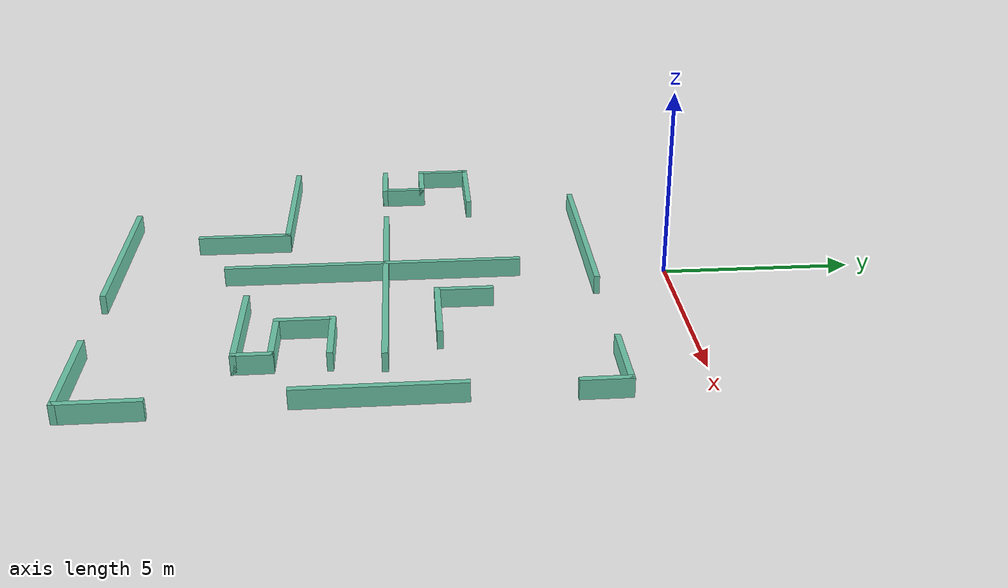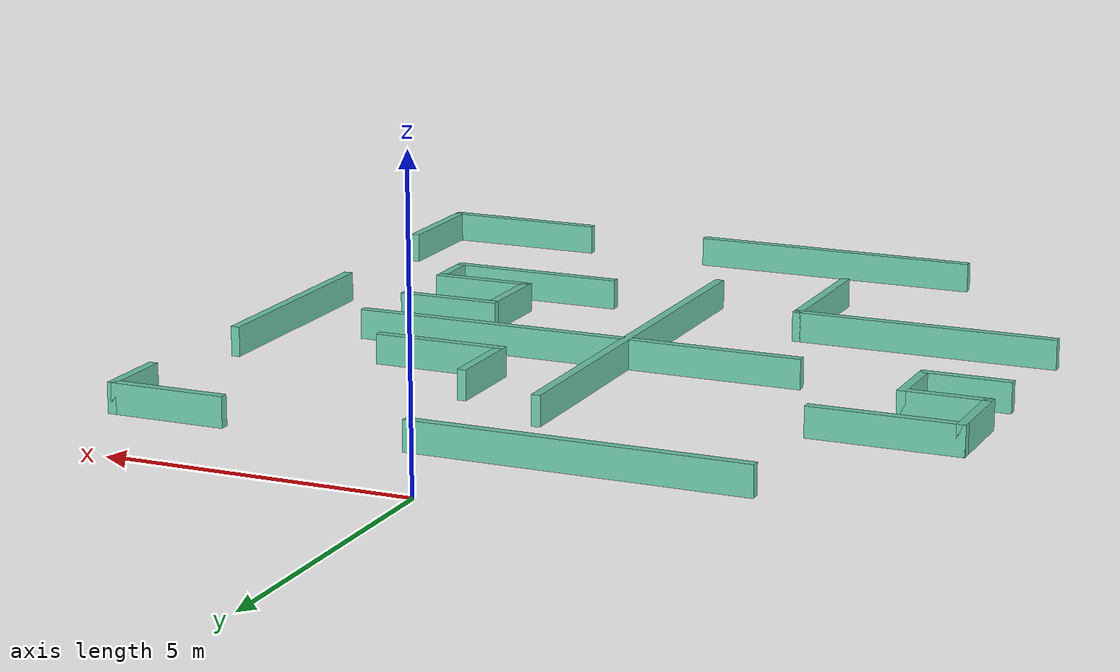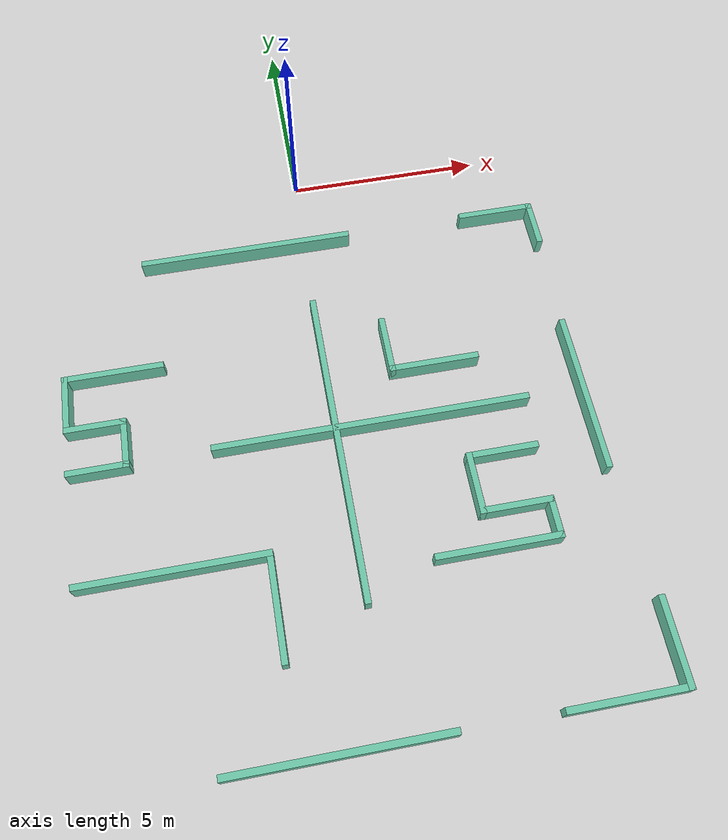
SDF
<?xml version='1.0'?>
<sdf version='1.6'>
  <model name='obstacle_pattern'>
    <pose frame=''>-0.144 -8.242 0 0 -0 0</pose>
    <link name='Wall_14'>
      <collision name='Wall_14_Collision'>
        <geometry>
          <box>
            <size>4 0.15 0.5</size>
          </box>
        </geometry>
        <pose frame=''>0 0 0.25 0 -0 0</pose>
      </collision>
      <visual name='Wall_14_Visual'>
        <pose frame=''>0 0 0.25 0 -0 0</pose>
        <geometry>
          <box>
            <size>4 0.15 0.5</size>
          </box>
        </geometry>
        <material>
          <script>
            <uri>file://media/materials/scripts/gazebo.material</uri>
            <name>Gazebo/Grey</name>
          </script>
          <ambient>0.435294 0.796078 0.67451 1</ambient>
        </material>
        <meta>
          <layer>0</layer>
        </meta>
      </visual>
      <pose frame=''>6.12636 0.687585 0 0 0 -1.5708</pose>
    </link>
    <link name='Wall_17'>
      <collision name='Wall_17_Collision'>
        <geometry>
          <box>
            <size>2 0.15 0.5</size>
          </box>
        </geometry>
        <pose frame=''>0 0 0.25 0 -0 0</pose>
      </collision>
      <visual name='Wall_17_Visual'>
        <pose frame=''>0 0 0.25 0 -0 0</pose>
        <geometry>
          <box>
            <size>2 0.15 0.5</size>
          </box>
        </geometry>
        <material>
          <script>
            <uri>file://media/materials/scripts/gazebo.material</uri>
            <name>Gazebo/Grey</name>
          </script>
          <ambient>0.435294 0.796078 0.67451 1</ambient>
        </material>
        <meta>
          <layer>0</layer>
        </meta>
      </visual>
      <pose frame=''>6.33 -5.327 0 0 0 -1.5708</pose>
    </link>
    <link name='Wall_18'>
      <collision name='Wall_18_Collision'>
        <geometry>
          <box>
            <size>2.8 0.15 0.5</size>
          </box>
        </geometry>
        <pose frame=''>0 0 0.25 0 -0 0</pose>
      </collision>
      <visual name='Wall_18_Visual'>
        <pose frame=''>0 0 0.25 0 -0 0</pose>
        <geometry>
          <box>
            <size>2.8 0.15 0.5</size>
          </box>
        </geometry>
        <material>
          <script>
            <uri>file://media/materials/scripts/gazebo.material</uri>
            <name>Gazebo/Grey</name>
          </script>
          <ambient>0.435294 0.796078 0.67451 1</ambient>
        </material>
        <meta>
          <layer>0</layer>
        </meta>
      </visual>
      <pose frame=''>5.005 -6.252 0 0 -0 3.14159</pose>
    </link>
    <link name='Wall_20'>
      <collision name='Wall_20_Collision'>
        <geometry>
          <box>
            <size>5 0.15 0.5</size>
          </box>
        </geometry>
        <pose frame=''>0 0 0.25 0 -0 0</pose>
      </collision>
      <visual name='Wall_20_Visual'>
        <pose frame=''>0 0 0.25 0 -0 0</pose>
        <geometry>
          <box>
            <size>5 0.15 0.5</size>
          </box>
        </geometry>
        <material>
          <script>
            <uri>file://media/materials/scripts/gazebo.material</uri>
            <name>Gazebo/Grey</name>
          </script>
          <ambient>0.435294 0.796078 0.67451 1</ambient>
        </material>
        <meta>
          <layer>0</layer>
        </meta>
      </visual>
      <pose frame=''>-1.10886 -6.23009 0 0 -0 3.14159</pose>
    </link>
    <link name='Wall_22'>
      <collision name='Wall_22_Collision'>
        <geometry>
          <box>
            <size>7.75 0.15 0.5</size>
          </box>
        </geometry>
        <pose frame=''>0 0 0.25 0 -0 0</pose>
      </collision>
      <visual name='Wall_22_Visual'>
        <pose frame=''>0 0 0.25 0 -0 0</pose>
        <geometry>
          <box>
            <size>7.75 0.15 0.5</size>
          </box>
        </geometry>
        <material>
          <script>
            <uri>file://media/materials/scripts/gazebo.material</uri>
            <name>Gazebo/Grey</name>
          </script>
          <ambient>0.435294 0.796078 0.67451 1</ambient>
        </material>
        <meta>
          <layer>0</layer>
        </meta>
      </visual>
      <pose frame=''>0.002 0.479 0 0 0 -1.5708</pose>
    </link>
    <link name='Wall_24'>
      <collision name='Wall_24_Collision'>
        <geometry>
          <box>
            <size>7.75 0.15 0.5</size>
          </box>
        </geometry>
        <pose frame=''>0 0 0.25 0 -0 0</pose>
      </collision>
      <visual name='Wall_24_Visual'>
        <pose frame=''>0 0 0.25 0 -0 0</pose>
        <geometry>
          <box>
            <size>7.75 0.15 0.5</size>
          </box>
        </geometry>
        <material>
          <script>
            <uri>file://media/materials/scripts/gazebo.material</uri>
            <name>Gazebo/Grey</name>
          </script>
          <ambient>0.435294 0.796078 0.67451 1</ambient>
        </material>
        <meta>
          <layer>0</layer>
        </meta>
      </visual>
      <pose frame=''>0.882621 0.804236 0 0 -0 0</pose>
    </link>
    <link name='Wall_26'>
      <collision name='Wall_26_Collision'>
        <geometry>
          <box>
            <size>2.5 0.15 0.5</size>
          </box>
        </geometry>
        <pose frame=''>0 0 0.25 0 -0 0</pose>
      </collision>
      <visual name='Wall_26_Visual'>
        <pose frame=''>0 0 0.25 0 -0 0</pose>
        <geometry>
          <box>
            <size>2.5 0.15 0.5</size>
          </box>
        </geometry>
        <material>
          <script>
            <uri>file://media/materials/scripts/gazebo.material</uri>
            <name>Gazebo/Grey</name>
          </script>
          <ambient>0.435294 0.796078 0.67451 1</ambient>
        </material>
        <meta>
          <layer>0</layer>
        </meta>
      </visual>
      <pose frame=''>-5.155 3.207 0 0 -0 3.14159</pose>
    </link>
    <link name='Wall_27'>
      <collision name='Wall_27_Collision'>
        <geometry>
          <box>
            <size>1.5 0.15 0.5</size>
          </box>
        </geometry>
        <pose frame=''>0 0 0.25 0 -0 0</pose>
      </collision>
      <visual name='Wall_27_Visual'>
        <pose frame=''>0 0 0.25 0 -0 0</pose>
        <geometry>
          <box>
            <size>1.5 0.15 0.5</size>
          </box>
        </geometry>
        <material>
          <script>
            <uri>file://media/materials/scripts/gazebo.material</uri>
            <name>Gazebo/Grey</name>
          </script>
          <ambient>0.435294 0.796078 0.67451 1</ambient>
        </material>
        <meta>
          <layer>0</layer>
        </meta>
      </visual>
      <pose frame=''>-6.33 2.532 0 0 0 -1.5708</pose>
    </link>
    <link name='Wall_28'>
      <collision name='Wall_28_Collision'>
        <geometry>
          <box>
            <size>1.5 0.15 0.5</size>
          </box>
        </geometry>
        <pose frame=''>0 0 0.25 0 -0 0</pose>
      </collision>
      <visual name='Wall_28_Visual'>
        <pose frame=''>0 0 0.25 0 -0 0</pose>
        <geometry>
          <box>
            <size>1.5 0.15 0.5</size>
          </box>
        </geometry>
        <material>
          <script>
            <uri>file://media/materials/scripts/gazebo.material</uri>
            <name>Gazebo/Grey</name>
          </script>
          <ambient>0.435294 0.796078 0.67451 1</ambient>
        </material>
        <meta>
          <layer>0</layer>
        </meta>
      </visual>
      <pose frame=''>-5.655 1.857 0 0 -0 0</pose>
    </link>
    <link name='Wall_29'>
      <collision name='Wall_29_Collision'>
        <geometry>
          <box>
            <size>1.25 0.15 0.5</size>
          </box>
        </geometry>
        <pose frame=''>0 0 0.25 0 -0 0</pose>
      </collision>
      <visual name='Wall_29_Visual'>
        <pose frame=''>0 0 0.25 0 -0 0</pose>
        <geometry>
          <box>
            <size>1.25 0.15 0.5</size>
          </box>
        </geometry>
        <material>
          <script>
            <uri>file://media/materials/scripts/gazebo.material</uri>
            <name>Gazebo/Grey</name>
          </script>
          <ambient>0.435294 0.796078 0.67451 1</ambient>
        </material>
        <meta>
          <layer>0</layer>
        </meta>
      </visual>
      <pose frame=''>-4.98 1.307 0 0 0 -1.5708</pose>
    </link>
    <link name='Wall_3'>
      <collision name='Wall_3_Collision'>
        <geometry>
          <box>
            <size>5.5 0.15 0.5</size>
          </box>
        </geometry>
        <pose frame=''>0 0 0.25 0 -0 0</pose>
      </collision>
      <visual name='Wall_3_Visual'>
        <pose frame=''>0 0 0.25 0 -0 0</pose>
        <geometry>
          <box>
            <size>5.5 0.15 0.5</size>
          </box>
        </geometry>
        <material>
          <script>
            <uri>file://media/materials/scripts/gazebo.material</uri>
            <name>Gazebo/Grey</name>
          </script>
          <ambient>0.435294 0.796078 0.67451 1</ambient>
        </material>
        <meta>
          <layer>0</layer>
        </meta>
      </visual>
      <pose frame=''>-1.481 6.232 0 0 -0 0</pose>
    </link>
    <link name='Wall_30'>
      <collision name='Wall_30_Collision'>
        <geometry>
          <box>
            <size>1.5 0.15 0.5</size>
          </box>
        </geometry>
        <pose frame=''>0 0 0.25 0 -0 0</pose>
      </collision>
      <visual name='Wall_30_Visual'>
        <pose frame=''>0 0 0.25 0 -0 0</pose>
        <geometry>
          <box>
            <size>1.5 0.15 0.5</size>
          </box>
        </geometry>
        <material>
          <script>
            <uri>file://media/materials/scripts/gazebo.material</uri>
            <name>Gazebo/Grey</name>
          </script>
          <ambient>0.435294 0.796078 0.67451 1</ambient>
        </material>
        <meta>
          <layer>0</layer>
        </meta>
      </visual>
      <pose frame=''>-5.655 0.757 0 0 -0 3.14159</pose>
    </link>
    <link name='Wall_32'>
      <collision name='Wall_32_Collision'>
        <geometry>
          <box>
            <size>1.75 0.15 0.5</size>
          </box>
        </geometry>
        <pose frame=''>0 0 0.25 0 -0 0</pose>
      </collision>
      <visual name='Wall_32_Visual'>
        <pose frame=''>0 0 0.25 0 -0 0</pose>
        <geometry>
          <box>
            <size>1.75 0.15 0.5</size>
          </box>
        </geometry>
        <material>
          <script>
            <uri>file://media/materials/scripts/gazebo.material</uri>
            <name>Gazebo/Grey</name>
          </script>
          <ambient>0.435294 0.796078 0.67451 1</ambient>
        </material>
        <meta>
          <layer>0</layer>
        </meta>
      </visual>
      <pose frame=''>3.764 -0.454999 0 0 -0 3.14159</pose>
    </link>
    <link name='Wall_33'>
      <collision name='Wall_33_Collision'>
        <geometry>
          <box>
            <size>1.5 0.15 0.5</size>
          </box>
        </geometry>
        <pose frame=''>0 0 0.25 0 -0 0</pose>
      </collision>
      <visual name='Wall_33_Visual'>
        <pose frame=''>0 0 0.25 0 -0 0</pose>
        <geometry>
          <box>
            <size>1.5 0.15 0.5</size>
          </box>
        </geometry>
        <material>
          <script>
            <uri>file://media/materials/scripts/gazebo.material</uri>
            <name>Gazebo/Grey</name>
          </script>
          <ambient>0.435294 0.796078 0.67451 1</ambient>
        </material>
        <meta>
          <layer>0</layer>
        </meta>
      </visual>
      <pose frame=''>2.964 -1.13 0 0 0 -1.5708</pose>
    </link>
    <link name='Wall_34'>
      <collision name='Wall_34_Collision'>
        <geometry>
          <box>
            <size>1.75 0.15 0.5</size>
          </box>
        </geometry>
        <pose frame=''>0 0 0.25 0 -0 0</pose>
      </collision>
      <visual name='Wall_34_Visual'>
        <pose frame=''>0 0 0.25 0 -0 0</pose>
        <geometry>
          <box>
            <size>1.75 0.15 0.5</size>
          </box>
        </geometry>
        <material>
          <script>
            <uri>file://media/materials/scripts/gazebo.material</uri>
            <name>Gazebo/Grey</name>
          </script>
          <ambient>0.435294 0.796078 0.67451 1</ambient>
        </material>
        <meta>
          <layer>0</layer>
        </meta>
      </visual>
      <pose frame=''>3.764 -1.805 0 0 -0 0</pose>
    </link>
    <link name='Wall_35'>
      <collision name='Wall_35_Collision'>
        <geometry>
          <box>
            <size>1 0.15 0.5</size>
          </box>
        </geometry>
        <pose frame=''>0 0 0.25 0 -0 0</pose>
      </collision>
      <visual name='Wall_35_Visual'>
        <pose frame=''>0 0 0.25 0 -0 0</pose>
        <geometry>
          <box>
            <size>1 0.15 0.5</size>
          </box>
        </geometry>
        <material>
          <script>
            <uri>file://media/materials/scripts/gazebo.material</uri>
            <name>Gazebo/Grey</name>
          </script>
          <ambient>0.435294 0.796078 0.67451 1</ambient>
        </material>
        <meta>
          <layer>0</layer>
        </meta>
      </visual>
      <pose frame=''>4.564 -2.23 0 0 0 -1.5708</pose>
    </link>
    <link name='Wall_36'>
      <collision name='Wall_36_Collision'>
        <geometry>
          <box>
            <size>3 0.15 0.5</size>
          </box>
        </geometry>
        <pose frame=''>0 0 0.25 0 -0 0</pose>
      </collision>
      <visual name='Wall_36_Visual'>
        <pose frame=''>0 0 0.25 0 -0 0</pose>
        <geometry>
          <box>
            <size>3 0.15 0.5</size>
          </box>
        </geometry>
        <material>
          <script>
            <uri>file://media/materials/scripts/gazebo.material</uri>
            <name>Gazebo/Grey</name>
          </script>
          <ambient>0.435294 0.796078 0.67451 1</ambient>
        </material>
        <meta>
          <layer>0</layer>
        </meta>
      </visual>
      <pose frame=''>3.139 -2.655 0 0 -0 3.14159</pose>
    </link>
    <link name='Wall_38'>
      <collision name='Wall_38_Collision'>
        <geometry>
          <box>
            <size>1.5 0.15 0.5</size>
          </box>
        </geometry>
        <pose frame=''>0 0 0.25 0 -0 0</pose>
      </collision>
      <visual name='Wall_38_Visual'>
        <pose frame=''>0 0 0.25 0 -0 0</pose>
        <geometry>
          <box>
            <size>1.5 0.15 0.5</size>
          </box>
        </geometry>
        <material>
          <script>
            <uri>file://media/materials/scripts/gazebo.material</uri>
            <name>Gazebo/Grey</name>
          </script>
          <ambient>0.435294 0.796078 0.67451 1</ambient>
        </material>
        <meta>
          <layer>0</layer>
        </meta>
      </visual>
      <pose frame=''>1.635 2.776 0 0 0 -1.5708</pose>
    </link>
    <link name='Wall_39'>
      <collision name='Wall_39_Collision'>
        <geometry>
          <box>
            <size>2.25 0.15 0.5</size>
          </box>
        </geometry>
        <pose frame=''>0 0 0.25 0 -0 0</pose>
      </collision>
      <visual name='Wall_39_Visual'>
        <pose frame=''>0 0 0.25 0 -0 0</pose>
        <geometry>
          <box>
            <size>2.25 0.15 0.5</size>
          </box>
        </geometry>
        <material>
          <script>
            <uri>file://media/materials/scripts/gazebo.material</uri>
            <name>Gazebo/Grey</name>
          </script>
          <ambient>0.435294 0.796078 0.67451 1</ambient>
        </material>
        <meta>
          <layer>0</layer>
        </meta>
      </visual>
      <pose frame=''>2.685 2.101 0 0 -0 0</pose>
    </link>
    <link name='Wall_42'>
      <collision name='Wall_42_Collision'>
        <geometry>
          <box>
            <size>4.5 0.15 0.5</size>
          </box>
        </geometry>
        <pose frame=''>0 0 0.25 0 -0 0</pose>
      </collision>
      <visual name='Wall_42_Visual'>
        <pose frame=''>0 0 0.25 0 -0 0</pose>
        <geometry>
          <box>
            <size>4.5 0.15 0.5</size>
          </box>
        </geometry>
        <material>
          <script>
            <uri>file://media/materials/scripts/gazebo.material</uri>
            <name>Gazebo/Grey</name>
          </script>
          <ambient>0.435294 0.796078 0.67451 1</ambient>
        </material>
        <meta>
          <layer>0</layer>
        </meta>
      </visual>
      <pose frame=''>-4.137 -1.906 0 0 -0 0</pose>
    </link>
    <link name='Wall_43'>
      <collision name='Wall_43_Collision'>
        <geometry>
          <box>
            <size>2.5 0.15 0.5</size>
          </box>
        </geometry>
        <pose frame=''>0 0 0.25 0 -0 0</pose>
      </collision>
      <visual name='Wall_43_Visual'>
        <pose frame=''>0 0 0.25 0 -0 0</pose>
        <geometry>
          <box>
            <size>2.5 0.15 0.5</size>
          </box>
        </geometry>
        <material>
          <script>
            <uri>file://media/materials/scripts/gazebo.material</uri>
            <name>Gazebo/Grey</name>
          </script>
          <ambient>0.435294 0.796078 0.67451 1</ambient>
        </material>
        <meta>
          <layer>0</layer>
        </meta>
      </visual>
      <pose frame=''>-1.962 -3.081 0 0 0 -1.5708</pose>
    </link>
    <link name='Wall_6'>
      <collision name='Wall_6_Collision'>
        <geometry>
          <box>
            <size>2 0.15 0.5</size>
          </box>
        </geometry>
        <pose frame=''>0 0 0.25 0 -0 0</pose>
      </collision>
      <visual name='Wall_6_Visual'>
        <pose frame=''>0 0 0.25 0 -0 0</pose>
        <geometry>
          <box>
            <size>2 0.15 0.5</size>
          </box>
        </geometry>
        <material>
          <script>
            <uri>file://media/materials/scripts/gazebo.material</uri>
            <name>Gazebo/Grey</name>
          </script>
          <ambient>0.435294 0.796078 0.67451 1</ambient>
        </material>
        <meta>
          <layer>0</layer>
        </meta>
      </visual>
      <pose frame=''>5.299 6.252 0 0 -0 0</pose>
    </link>
    <link name='Wall_9'>
      <collision name='Wall_9_Collision'>
        <geometry>
          <box>
            <size>1.25 0.15 0.5</size>
          </box>
        </geometry>
        <pose frame=''>0 0 0.25 0 -0 0</pose>
      </collision>
      <visual name='Wall_9_Visual'>
        <pose frame=''>0 0 0.25 0 -0 0</pose>
        <geometry>
          <box>
            <size>1.25 0.15 0.5</size>
          </box>
        </geometry>
        <material>
          <script>
            <uri>file://media/materials/scripts/gazebo.material</uri>
            <name>Gazebo/Grey</name>
          </script>
          <ambient>0.435294 0.796078 0.67451 1</ambient>
        </material>
        <meta>
          <layer>0</layer>
        </meta>
      </visual>
      <pose frame=''>6.224 5.702 0 0 0 -1.5708</pose>
    </link>
    <static>1</static>
  </model>
</sdf>
